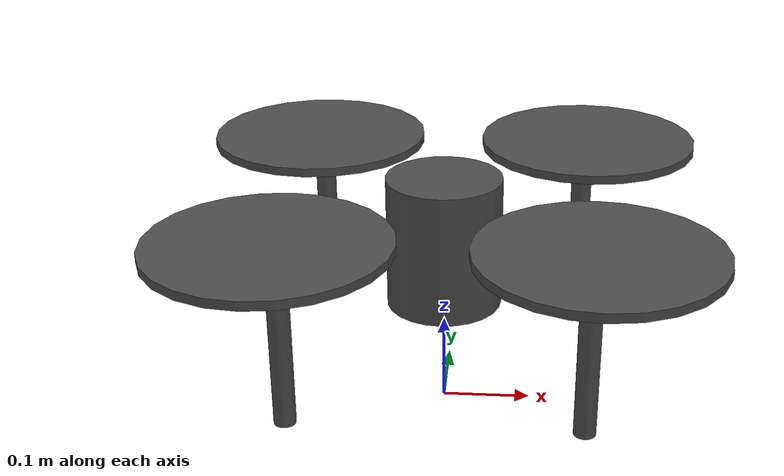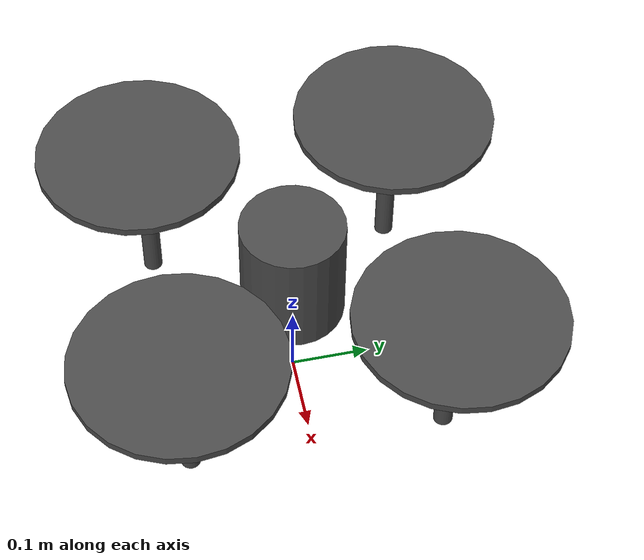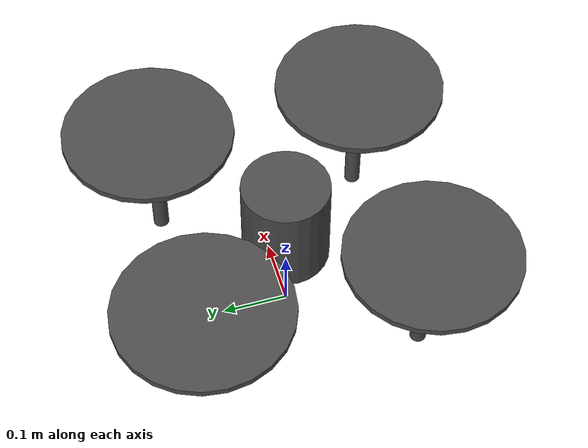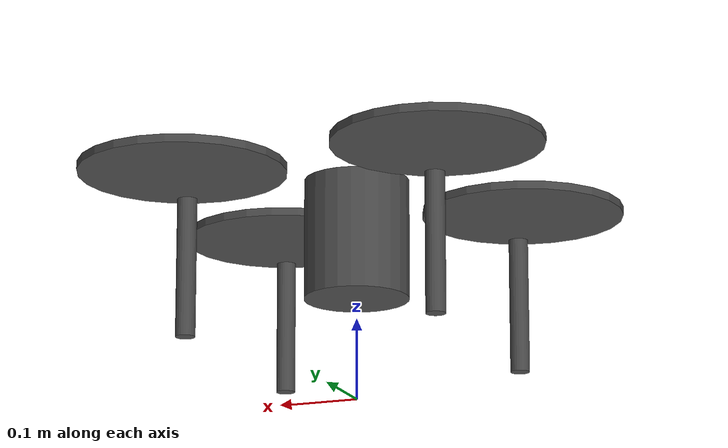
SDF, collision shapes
<?xml version="1.0" encoding="utf-8"?>
<sdf version='1.9'>

  <!-- 10mm thickness for propeller collision -->
  <model name="f450">
    <pose>0 0 0.25 0 0 0</pose>

    <plugin filename="gz-sim-magnetometer-system" name="gz::sim::systems::Magnetometer"></plugin>

    <link name="base_link">

      <inertial>
    <mass>2.0232</mass>
    <inertia>
      <ixx>0.020653500000000005</ixx><ixy>0</ixy><ixz>0</ixz>
      <iyy>0.020653500000000005</iyy><iyz>0</iyz><izz>0.04046400000000001</izz>
    </inertia>
  </inertial>
  <collision name="base_link_collision">
    <pose>0 0 -0.05 0 0 0</pose>
    <geometry>
      <cylinder>
        <length>0.15000000000000002</length>
        <radius>0.065</radius>
      </cylinder>
    </geometry>
    <surface>
      <contact>
        <ode>
          <min_depth>0.001</min_depth>
          <max_vel>0.0</max_vel>
        </ode>
      </contact>
      <friction><ode/></friction>
    </surface>
  </collision>

      <visual name="lower_central_board_visual">
    <pose>0 0 -0.05 0 0 0</pose>
    <geometry>
      <mesh>
        <uri>model://f450/meshes/dji_f450_central_bottom.dae</uri>
        <scale>1 1 1</scale>
      </mesh>
    </geometry>
    <material>
      <script>
        <name>Gazebo/DarkGrey</name>
        <uri>file://media/materials/scripts/gazebo.material</uri>
      </script>
    </material>
  </visual>

      <visual name="upper_central_board_visual">
    <pose>0 0 -0.012000000000000004 0 0 0</pose>
    <geometry>
      <mesh>
        <uri>model://f450/meshes/dji_f450_central_top.dae</uri>
        <scale>1 1 1</scale>
      </mesh>
    </geometry>
    <material>
      <script>
        <name>Gazebo/DarkGrey</name>
        <uri>file://media/materials/scripts/gazebo.material</uri>
      </script>
    </material>
  </visual>

        <visual name="front_right_arm_visual">
    <pose>0.0459619407767 -0.0459619407767 -0.012000000000000004 0 0 -0.7853981633975001</pose>
    <geometry>
      <mesh>
        <uri>model://f450/meshes/dji_f450_arm.dae</uri>
        <scale>1 1 1</scale>
      </mesh>
    </geometry>
    <material>
      <script>
        <name>Gazebo/White</name>
        <uri>file://media/materials/scripts/gazebo.material</uri>
      </script>
    </material>
  </visual>

        <visual name="front_right_leg_visual">
    <pose>0.157543390846904 -0.157543390846904 -0.11000000000000001 0 0 2.3561944901925003</pose>
    <geometry>
      <mesh>
        <uri>model://f450/meshes/dji_f450_leg_170mm.dae</uri>
        <scale>0.001 0.001 0.001</scale>
      </mesh>
    </geometry>
    <material>
      <script>
        <name>Gazebo/White</name>
        <uri>file://media/materials/scripts/gazebo.material</uri>
      </script>
    </material>
  </visual>
  <collision name="front_right_leg_link_collision">
    <pose>0.157543390846904 -0.157543390846904 -0.11000000000000001 0 0 2.3561944901925003</pose>
    <geometry>
      <cylinder>
        <length>0.17</length>
        <radius>0.012</radius>
      </cylinder>
    </geometry>
    <surface>
      <contact>
        <ode>
          <min_depth>0.001</min_depth>
          <max_vel>0.0</max_vel>
        </ode>
      </contact>
      <friction><ode/></friction>
    </surface>
  </collision>

        <visual name="front_left_arm_visual">
    <pose>0.0459619407767 0.0459619407767 -0.012000000000000004 0 0 0.7853981633975001</pose>
    <geometry>
      <mesh>
        <uri>model://f450/meshes/dji_f450_arm.dae</uri>
        <scale>1 1 1</scale>
      </mesh>
    </geometry>
    <material>
      <script>
        <name>Gazebo/White</name>
        <uri>file://media/materials/scripts/gazebo.material</uri>
      </script>
    </material>
  </visual>

        <visual name="front_left_leg_visual">
    <pose>0.157543390846904 0.157543390846904 -0.11000000000000001 0 0 -2.3561944901925003</pose>
    <geometry>
      <mesh>
        <uri>model://f450/meshes/dji_f450_leg_170mm.dae</uri>
        <scale>0.001 0.001 0.001</scale>
      </mesh>
    </geometry>
    <material>
      <script>
        <name>Gazebo/White</name>
        <uri>file://media/materials/scripts/gazebo.material</uri>
      </script>
    </material>
  </visual>
  <collision name="front_left_leg_link_collision">
    <pose>0.157543390846904 0.157543390846904 -0.11000000000000001 0 0 -2.3561944901925003</pose>
    <geometry>
      <cylinder>
        <length>0.17</length>
        <radius>0.012</radius>
      </cylinder>
    </geometry>
    <surface>
      <contact>
        <ode>
          <min_depth>0.001</min_depth>
          <max_vel>0.0</max_vel>
        </ode>
      </contact>
      <friction><ode/></friction>
    </surface>
  </collision>

        <visual name="back_right_arm_visual">
    <pose>-0.0459619407767 -0.0459619407767 -0.012000000000000004 0 0 -2.3561944901925003</pose>
    <geometry>
      <mesh>
        <uri>model://f450/meshes/dji_f450_arm.dae</uri>
        <scale>1 1 1</scale>
      </mesh>
    </geometry>
    <material>
      <script>
        <name>Gazebo/Red</name>
        <uri>file://media/materials/scripts/gazebo.material</uri>
      </script>
    </material>
  </visual>

        <visual name="back_right_leg_visual">
    <pose>-0.157543390846904 -0.157543390846904 -0.11000000000000001 0 0 0.7853981633975001</pose>
    <geometry>
      <mesh>
        <uri>model://f450/meshes/dji_f450_leg_170mm.dae</uri>
        <scale>0.001 0.001 0.001</scale>
      </mesh>
    </geometry>
    <material>
      <script>
        <name>Gazebo/Red</name>
        <uri>file://media/materials/scripts/gazebo.material</uri>
      </script>
    </material>
  </visual>
  <collision name="back_right_leg_link_collision">
    <pose>-0.157543390846904 -0.157543390846904 -0.11000000000000001 0 0 0.7853981633975001</pose>
    <geometry>
      <cylinder>
        <length>0.17</length>
        <radius>0.012</radius>
      </cylinder>
    </geometry>
    <surface>
      <contact>
        <ode>
          <min_depth>0.001</min_depth>
          <max_vel>0.0</max_vel>
        </ode>
      </contact>
      <friction><ode/></friction>
    </surface>
  </collision>

        <visual name="back_left_arm_visual">
    <pose>-0.0459619407767 0.0459619407767 -0.012000000000000004 0 0 2.3561944901925003</pose>
    <geometry>
      <mesh>
        <uri>model://f450/meshes/dji_f450_arm.dae</uri>
        <scale>1 1 1</scale>
      </mesh>
    </geometry>
    <material>
      <script>
        <name>Gazebo/Red</name>
        <uri>file://media/materials/scripts/gazebo.material</uri>
      </script>
    </material>
  </visual>

        <visual name="back_left_leg_visual">
    <pose>-0.157543390846904 0.157543390846904 -0.11000000000000001 0 0 -0.7853981633975001</pose>
    <geometry>
      <mesh>
        <uri>model://f450/meshes/dji_f450_leg_170mm.dae</uri>
        <scale>0.001 0.001 0.001</scale>
      </mesh>
    </geometry>
    <material>
      <script>
        <name>Gazebo/Red</name>
        <uri>file://media/materials/scripts/gazebo.material</uri>
      </script>
    </material>
  </visual>
  <collision name="back_left_leg_link_collision">
    <pose>-0.157543390846904 0.157543390846904 -0.11000000000000001 0 0 -0.7853981633975001</pose>
    <geometry>
      <cylinder>
        <length>0.17</length>
        <radius>0.012</radius>
      </cylinder>
    </geometry>
    <surface>
      <contact>
        <ode>
          <min_depth>0.001</min_depth>
          <max_vel>0.0</max_vel>
        </ode>
      </contact>
      <friction><ode/></friction>
    </surface>
  </collision>

      <visual name="NUC_visual">
    <pose>0 0 0.023 0 0 0</pose>
    <geometry>
      <mesh>
        <uri>model://f450/meshes/dji_f450_nuc.dae</uri>
        <scale>0.001 0.001 0.001</scale>
      </mesh>
    </geometry>
    <material>
      <script>
        <name>Gazebo/DarkGrey</name>
        <uri>file://media/materials/scripts/gazebo.material</uri>
      </script>
    </material>
  </visual>

      <visual name="pixhawk_visual">
    <pose>0 0 -0.0425 0 0 0</pose>
    <geometry>
      <mesh>
        <uri>model://f450/meshes/dji_f450_pixhawk.dae</uri>
        <scale>1 1 1</scale>
      </mesh>
    </geometry>
    <material>
      <script>
        <name>Gazebo/DarkGrey</name>
        <uri>file://media/materials/scripts/gazebo.material</uri>
      </script>
    </material>
  </visual>

      <visual name="battery_mount_visual">
    <pose>0 0 -0.078 0 0 0</pose>
    <geometry>
      <mesh>
        <uri>model://f450/meshes/dji_f450_battery_mount.dae</uri>
        <scale>0.001 0.001 0.001</scale>
      </mesh>
    </geometry>
    <material>
      <script>
        <name>Gazebo/DarkGrey</name>
        <uri>file://media/materials/scripts/gazebo.material</uri>
      </script>
    </material>
  </visual>

      <visual name="battery_visual">
    <pose>0 0 -0.077 0 0 0</pose>
    <geometry>
      <box>
        <size>0.13 0.042 0.044</size>
      </box>
    </geometry>
    <material>
      <script>
        <name>Gazebo/Grey</name>
        <uri>file://media/materials/scripts/gazebo.material</uri>
      </script>
    </material>
  </visual>

      <sensor name="imu_sensor" type="imu">
        <always_on>1</always_on><update_rate>250</update_rate>
        <imu>
          <angular_velocity>
            <x><noise type="gaussian"><mean>0</mean><stddev>0.00018665</stddev><dynamic_bias_stddev>3.8785e-05</dynamic_bias_stddev><dynamic_bias_correlation_time>1000</dynamic_bias_correlation_time></noise></x>
            <y><noise type="gaussian"><mean>0</mean><stddev>0.00018665</stddev><dynamic_bias_stddev>3.8785e-05</dynamic_bias_stddev><dynamic_bias_correlation_time>1000</dynamic_bias_correlation_time></noise></y>
            <z><noise type="gaussian"><mean>0</mean><stddev>0.00018665</stddev><dynamic_bias_stddev>3.8785e-05</dynamic_bias_stddev><dynamic_bias_correlation_time>1000</dynamic_bias_correlation_time></noise></z>
          </angular_velocity>
          <linear_acceleration>
            <x><noise type="gaussian"><mean>0</mean><stddev>0.00186</stddev><dynamic_bias_stddev>0.006</dynamic_bias_stddev><dynamic_bias_correlation_time>300</dynamic_bias_correlation_time></noise></x>
            <y><noise type="gaussian"><mean>0</mean><stddev>0.00186</stddev><dynamic_bias_stddev>0.006</dynamic_bias_stddev><dynamic_bias_correlation_time>300</dynamic_bias_correlation_time></noise></y>
            <z><noise type="gaussian"><mean>0</mean><stddev>0.00186</stddev><dynamic_bias_stddev>0.006</dynamic_bias_stddev><dynamic_bias_correlation_time>300</dynamic_bias_correlation_time></noise></z>
          </linear_acceleration>
        </imu>
      </sensor>

      <sensor name="air_pressure_sensor" type="air_pressure">
        <always_on>1</always_on><update_rate>50</update_rate>
        <air_pressure>
          <pressure><noise type="gaussian"><mean>0</mean><stddev>0.01</stddev></noise></pressure>
        </air_pressure>
      </sensor>

      <sensor name="magnetometer_sensor" type="magnetometer">
        <always_on>1</always_on><update_rate>100</update_rate>
        <magnetometer>
          <x><noise type="gaussian"><stddev>0.0001</stddev></noise></x>
          <y><noise type="gaussian"><stddev>0.0001</stddev></noise></y>
          <z><noise type="gaussian"><stddev>0.0001</stddev></noise></z>
        </magnetometer>
      </sensor>

      <sensor name="navsat_sensor" type="navsat">
        <always_on>1</always_on><update_rate>30</update_rate>
      </sensor>
    </link>

      <link name="rotor_0">
        <pose>0.1626345596714 -0.1626345596714 0.011499999999999996 0 0 0</pose>
        <inertial>
          <mass>0.0126</mass>
          <inertia><ixx>9.75e-07</ixx><iyy>4.17041e-05</iyy><izz>4.26041e-05</izz></inertia>
        </inertial>

        <collision name="rotor_0_collision">
          <pose>0 0 0 0 0 0</pose>
          <geometry>
            <cylinder>
              <length>0.01</length>
              <radius>0.127</radius>
            </cylinder>
          </geometry>
          <surface>
            <contact>
              <ode/>
            </contact>
            <friction>
              <ode/>
            </friction>
          </surface>
        </collision>

        <visual name="motor_0_base_visual">
          <pose>0 0 -0.0235 0 0 0</pose>
          <geometry><mesh><uri>model://f450/meshes/dji_f450_rotor.dae</uri><scale>1 1 1</scale></mesh></geometry>
          <material>
            <ambient>0.3 0.3 0.3 1</ambient><diffuse>0.3 0.3 0.3 1</diffuse><specular>0.5 0.5 0.5 1</specular>
          </material>
        </visual>
        <visual name="rotor_0_visual">
          <geometry><mesh><uri>model://f450/meshes/dji_f450_prop.dae</uri><scale>1 1 1</scale></mesh></geometry>
          <material>
            <ambient>0.05 0.05 0.05 1</ambient><diffuse>0.05 0.05 0.05 1</diffuse>
          </material>
        </visual>
      </link>

      <joint name="rotor_0_joint" type="revolute">
        <child>rotor_0</child>
        <parent>base_link</parent>
        <axis><xyz>0 0 1</xyz><limit><lower>-1e+16</lower><upper>1e+16</upper></limit></axis>
      </joint>

      <plugin filename="gz-sim-multicopter-motor-model-system" name="gz::sim::systems::MulticopterMotorModel">
        <jointName>rotor_0_joint</jointName>
        <linkName>rotor_0</linkName>
        <turningDirection>ccw</turningDirection>
        <timeConstantUp>0.0125</timeConstantUp>
        <timeConstantDown>0.0125</timeConstantDown>
        <maxRotVelocity>1032</maxRotVelocity>
        <motorConstant>1.2e-05</motorConstant>
        <momentConstant>0.0137</momentConstant>
        <commandSubTopic>command/motor_speed</commandSubTopic>
        <motorNumber>0</motorNumber>
        <rotorDragCoefficient>8.06428e-05</rotorDragCoefficient>
        <rollingMomentCoefficient>1.0e-6</rollingMomentCoefficient>
        <rotorVelocitySlowdownSim>10</rotorVelocitySlowdownSim>
        <motorType>velocity</motorType>
      </plugin>

      <link name="rotor_1">
        <pose>-0.1626345596714 0.1626345596714 0.011499999999999996 0 0 0</pose>
        <inertial>
          <mass>0.0126</mass>
          <inertia><ixx>9.75e-07</ixx><iyy>4.17041e-05</iyy><izz>4.26041e-05</izz></inertia>
        </inertial>

        <collision name="rotor_1_collision">
          <pose>0 0 0 0 0 0</pose>
          <geometry>
            <cylinder>
              <length>0.01</length>
              <radius>0.127</radius>
            </cylinder>
          </geometry>
          <surface>
            <contact>
              <ode/>
            </contact>
            <friction>
              <ode/>
            </friction>
          </surface>
        </collision>

        <visual name="motor_1_base_visual">
          <pose>0 0 -0.0235 0 0 0</pose>
          <geometry><mesh><uri>model://f450/meshes/dji_f450_rotor.dae</uri><scale>1 1 1</scale></mesh></geometry>
          <material>
            <ambient>0.3 0.3 0.3 1</ambient><diffuse>0.3 0.3 0.3 1</diffuse><specular>0.5 0.5 0.5 1</specular>
          </material>
        </visual>
        <visual name="rotor_1_visual">
          <geometry><mesh><uri>model://f450/meshes/dji_f450_prop.dae</uri><scale>1 1 1</scale></mesh></geometry>
          <material>
            <ambient>0.05 0.05 0.05 1</ambient><diffuse>0.05 0.05 0.05 1</diffuse>
          </material>
        </visual>
      </link>

      <joint name="rotor_1_joint" type="revolute">
        <child>rotor_1</child>
        <parent>base_link</parent>
        <axis><xyz>0 0 1</xyz><limit><lower>-1e+16</lower><upper>1e+16</upper></limit></axis>
      </joint>

      <plugin filename="gz-sim-multicopter-motor-model-system" name="gz::sim::systems::MulticopterMotorModel">
        <jointName>rotor_1_joint</jointName>
        <linkName>rotor_1</linkName>
        <turningDirection>ccw</turningDirection>
        <timeConstantUp>0.0125</timeConstantUp>
        <timeConstantDown>0.0125</timeConstantDown>
        <maxRotVelocity>1032</maxRotVelocity>
        <motorConstant>1.2e-05</motorConstant>
        <momentConstant>0.0137</momentConstant>
        <commandSubTopic>command/motor_speed</commandSubTopic>
        <motorNumber>1</motorNumber>
        <rotorDragCoefficient>8.06428e-05</rotorDragCoefficient>
        <rollingMomentCoefficient>1.0e-6</rollingMomentCoefficient>
        <rotorVelocitySlowdownSim>10</rotorVelocitySlowdownSim>
        <motorType>velocity</motorType>
      </plugin>

      <link name="rotor_2">
        <pose>0.1626345596714 0.1626345596714 0.011499999999999996 0 0 0</pose>
        <inertial>
          <mass>0.0126</mass>
          <inertia><ixx>9.75e-07</ixx><iyy>4.17041e-05</iyy><izz>4.26041e-05</izz></inertia>
        </inertial>

        <collision name="rotor_2_collision">
          <pose>0 0 0 0 0 0</pose>
          <geometry>
            <cylinder>
              <length>0.01</length>
              <radius>0.127</radius>
            </cylinder>
          </geometry>
          <surface>
            <contact>
              <ode/>
            </contact>
            <friction>
              <ode/>
            </friction>
          </surface>
        </collision>

        <visual name="motor_2_base_visual">
          <pose>0 0 -0.0235 0 0 0</pose>
          <geometry><mesh><uri>model://f450/meshes/dji_f450_rotor.dae</uri><scale>1 1 1</scale></mesh></geometry>
          <material>
            <ambient>0.3 0.3 0.3 1</ambient><diffuse>0.3 0.3 0.3 1</diffuse><specular>0.5 0.5 0.5 1</specular>
          </material>
        </visual>
        <visual name="rotor_2_visual">
          <geometry><mesh><uri>model://f450/meshes/dji_f450_prop.dae</uri><scale>-1 1 1</scale></mesh></geometry>
          <material>
            <ambient>0.05 0.05 0.05 1</ambient><diffuse>0.05 0.05 0.05 1</diffuse>
          </material>
        </visual>
      </link>

      <joint name="rotor_2_joint" type="revolute">
        <child>rotor_2</child>
        <parent>base_link</parent>
        <axis><xyz>0 0 1</xyz><limit><lower>-1e+16</lower><upper>1e+16</upper></limit></axis>
      </joint>

      <plugin filename="gz-sim-multicopter-motor-model-system" name="gz::sim::systems::MulticopterMotorModel">
        <jointName>rotor_2_joint</jointName>
        <linkName>rotor_2</linkName>
        <turningDirection>cw</turningDirection>
        <timeConstantUp>0.0125</timeConstantUp>
        <timeConstantDown>0.0125</timeConstantDown>
        <maxRotVelocity>1032</maxRotVelocity>
        <motorConstant>1.2e-05</motorConstant>
        <momentConstant>0.0137</momentConstant>
        <commandSubTopic>command/motor_speed</commandSubTopic>
        <motorNumber>2</motorNumber>
        <rotorDragCoefficient>8.06428e-05</rotorDragCoefficient>
        <rollingMomentCoefficient>1.0e-6</rollingMomentCoefficient>
        <rotorVelocitySlowdownSim>10</rotorVelocitySlowdownSim>
        <motorType>velocity</motorType>
      </plugin>

      <link name="rotor_3">
        <pose>-0.1626345596714 -0.1626345596714 0.011499999999999996 0 0 0</pose>
        <inertial>
          <mass>0.0126</mass>
          <inertia><ixx>9.75e-07</ixx><iyy>4.17041e-05</iyy><izz>4.26041e-05</izz></inertia>
        </inertial>

        <collision name="rotor_3_collision">
          <pose>0 0 0 0 0 0</pose>
          <geometry>
            <cylinder>
              <length>0.01</length>
              <radius>0.127</radius>
            </cylinder>
          </geometry>
          <surface>
            <contact>
              <ode/>
            </contact>
            <friction>
              <ode/>
            </friction>
          </surface>
        </collision>

        <visual name="motor_3_base_visual">
          <pose>0 0 -0.0235 0 0 0</pose>
          <geometry><mesh><uri>model://f450/meshes/dji_f450_rotor.dae</uri><scale>1 1 1</scale></mesh></geometry>
          <material>
            <ambient>0.3 0.3 0.3 1</ambient><diffuse>0.3 0.3 0.3 1</diffuse><specular>0.5 0.5 0.5 1</specular>
          </material>
        </visual>
        <visual name="rotor_3_visual">
          <geometry><mesh><uri>model://f450/meshes/dji_f450_prop.dae</uri><scale>-1 1 1</scale></mesh></geometry>
          <material>
            <ambient>0.05 0.05 0.05 1</ambient><diffuse>0.05 0.05 0.05 1</diffuse>
          </material>
        </visual>
      </link>

      <joint name="rotor_3_joint" type="revolute">
        <child>rotor_3</child>
        <parent>base_link</parent>
        <axis><xyz>0 0 1</xyz><limit><lower>-1e+16</lower><upper>1e+16</upper></limit></axis>
      </joint>

      <plugin filename="gz-sim-multicopter-motor-model-system" name="gz::sim::systems::MulticopterMotorModel">
        <jointName>rotor_3_joint</jointName>
        <linkName>rotor_3</linkName>
        <turningDirection>cw</turningDirection>
        <timeConstantUp>0.0125</timeConstantUp>
        <timeConstantDown>0.0125</timeConstantDown>
        <maxRotVelocity>1032</maxRotVelocity>
        <motorConstant>1.2e-05</motorConstant>
        <momentConstant>0.0137</momentConstant>
        <commandSubTopic>command/motor_speed</commandSubTopic>
        <motorNumber>3</motorNumber>
        <rotorDragCoefficient>8.06428e-05</rotorDragCoefficient>
        <rollingMomentCoefficient>1.0e-6</rollingMomentCoefficient>
        <rotorVelocitySlowdownSim>10</rotorVelocitySlowdownSim>
        <motorType>velocity</motorType>
      </plugin>

      <plugin
        filename="gz-sim-odometry-publisher-system"
        name="gz::sim::systems::OdometryPublisher">
        <dimensions>3</dimensions>
      </plugin>

  </model>
</sdf>
